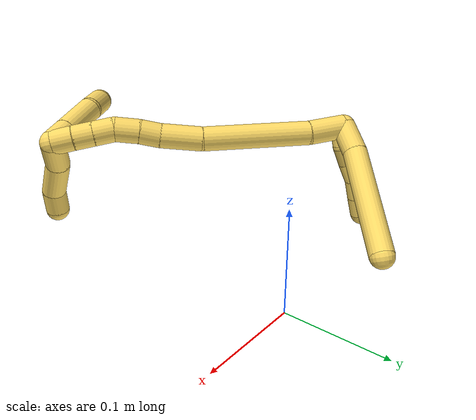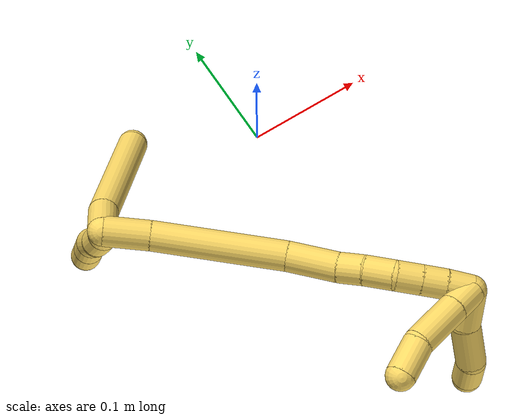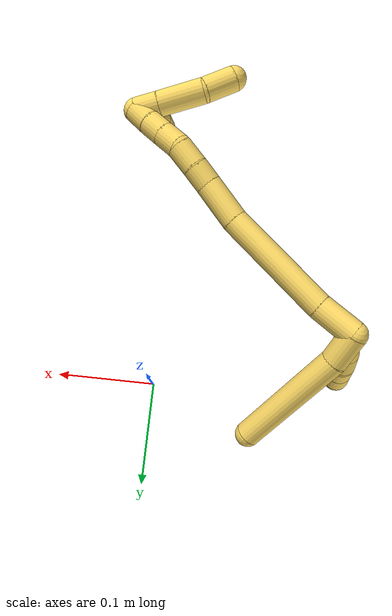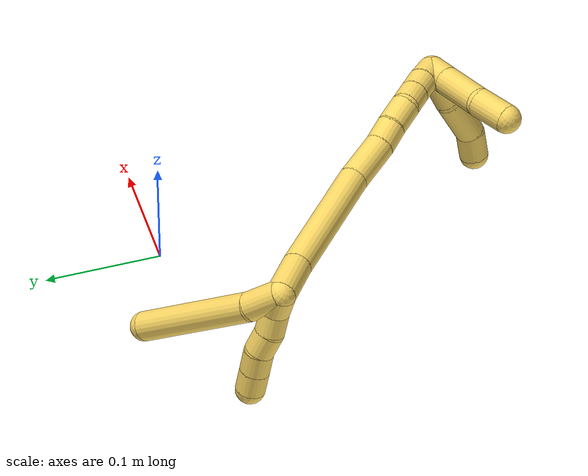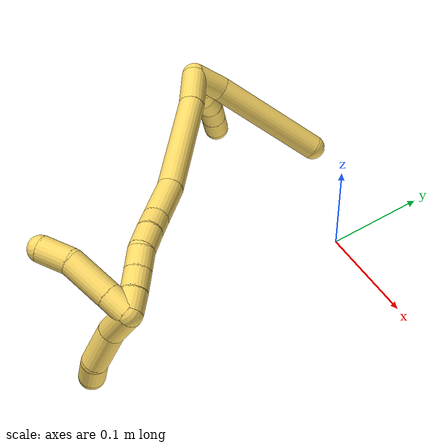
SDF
<sdf version="1.7">
 <world name="default">
  <model name="5">
   <static>0</static>
   <link name="5">
    <collision name="collision-cylinder-e_1_2_8">
     <pose>0.004692 0.004393 -0.014916 -2.85519 0.293073 -1.59415</pose>
     <geometry><cylinder><radius>0.0125</radius><length>0.032484</length></cylinder></geometry>
     <surface>
      <friction><ode><mu>1.16</mu><mu2>1.16</mu2><slip1>0</slip1><slip2>0</slip2></ode></friction>
      <contact><ode><kp>1e+06</kp><kd>1</kd><max_vel>0</max_vel><min_depth>0.001</min_depth></ode></contact>
     </surface>
    </collision>
    <visual name="visual-cylinder-e_1_2_8">
     <pose>0.004692 0.004393 -0.014916 -2.85519 0.293073 -1.59415</pose>
     <geometry><cylinder><radius>0.0125</radius><length>0.032484</length></cylinder></geometry>
     <material><ambient>1 0.858824 0.4 1</ambient></material>
    </visual>
    <collision name="collision-cylinder-e_2_8_6">
     <pose>0.035014 0.016918 -0.082076 -2.98716 0.451365 -2.49152</pose>
     <geometry><cylinder><radius>0.0125</radius><length>0.117516</length></cylinder></geometry>
     <surface>
      <friction><ode><mu>1.16</mu><mu2>1.16</mu2><slip1>0</slip1><slip2>0</slip2></ode></friction>
      <contact><ode><kp>1e+06</kp><kd>1</kd><max_vel>0</max_vel><min_depth>0.001</min_depth></ode></contact>
     </surface>
    </collision>
    <visual name="visual-cylinder-e_2_8_6">
     <pose>0.035014 0.016918 -0.082076 -2.98716 0.451365 -2.49152</pose>
     <geometry><cylinder><radius>0.0125</radius><length>0.117516</length></cylinder></geometry>
     <material><ambient>1 0.858824 0.4 1</ambient></material>
    </visual>
    <collision name="collision-cylinder-e_1_2_9">
     <pose>-0.00213 -0.001498 -0.009655 2.98768 -0.214658 -1.89925</pose>
     <geometry><cylinder><radius>0.0125</radius><length>0.02</length></cylinder></geometry>
     <surface>
      <friction><ode><mu>1.16</mu><mu2>1.16</mu2><slip1>0</slip1><slip2>0</slip2></ode></friction>
      <contact><ode><kp>1e+06</kp><kd>1</kd><max_vel>0</max_vel><min_depth>0.001</min_depth></ode></contact>
     </surface>
    </collision>
    <visual name="visual-cylinder-e_1_2_9">
     <pose>-0.00213 -0.001498 -0.009655 2.98768 -0.214658 -1.89925</pose>
     <geometry><cylinder><radius>0.0125</radius><length>0.02</length></cylinder></geometry>
     <material><ambient>1 0.858824 0.4 1</ambient></material>
    </visual>
    <collision name="collision-cylinder-e_2_9_10">
     <pose>-0.009044 -0.002559 -0.028081 -3.09189 -0.498804 2.94702</pose>
     <geometry><cylinder><radius>0.0125</radius><length>0.02</length></cylinder></geometry>
     <surface>
      <friction><ode><mu>1.16</mu><mu2>1.16</mu2><slip1>0</slip1><slip2>0</slip2></ode></friction>
      <contact><ode><kp>1e+06</kp><kd>1</kd><max_vel>0</max_vel><min_depth>0.001</min_depth></ode></contact>
     </surface>
    </collision>
    <visual name="visual-cylinder-e_2_9_10">
     <pose>-0.009044 -0.002559 -0.028081 -3.09189 -0.498804 2.94702</pose>
     <geometry><cylinder><radius>0.0125</radius><length>0.02</length></cylinder></geometry>
     <material><ambient>1 0.858824 0.4 1</ambient></material>
    </visual>
    <collision name="collision-cylinder-e_3_10_11">
     <pose>-0.016485 -0.000825 -0.046404 -3.00656 -0.268998 2.21476</pose>
     <geometry><cylinder><radius>0.0125</radius><length>0.02</length></cylinder></geometry>
     <surface>
      <friction><ode><mu>1.16</mu><mu2>1.16</mu2><slip1>0</slip1><slip2>0</slip2></ode></friction>
      <contact><ode><kp>1e+06</kp><kd>1</kd><max_vel>0</max_vel><min_depth>0.001</min_depth></ode></contact>
     </surface>
    </collision>
    <visual name="visual-cylinder-e_3_10_11">
     <pose>-0.016485 -0.000825 -0.046404 -3.00656 -0.268998 2.21476</pose>
     <geometry><cylinder><radius>0.0125</radius><length>0.02</length></cylinder></geometry>
     <material><ambient>1 0.858824 0.4 1</ambient></material>
    </visual>
    <collision name="collision-cylinder-e_4_11_12">
     <pose>-0.02297 -0.000487 -0.065146 3.03753 -0.392683 -2.62941</pose>
     <geometry><cylinder><radius>0.0125</radius><length>0.02</length></cylinder></geometry>
     <surface>
      <friction><ode><mu>1.16</mu><mu2>1.16</mu2><slip1>0</slip1><slip2>0</slip2></ode></friction>
      <contact><ode><kp>1e+06</kp><kd>1</kd><max_vel>0</max_vel><min_depth>0.001</min_depth></ode></contact>
     </surface>
    </collision>
    <visual name="visual-cylinder-e_4_11_12">
     <pose>-0.02297 -0.000487 -0.065146 3.03753 -0.392683 -2.62941</pose>
     <geometry><cylinder><radius>0.0125</radius><length>0.02</length></cylinder></geometry>
     <material><ambient>1 0.858824 0.4 1</ambient></material>
    </visual>
    <collision name="collision-cylinder-e_5_12_5">
     <pose>-0.030677 -0.002291 -0.083512 3.04984 -0.398481 -2.69447</pose>
     <geometry><cylinder><radius>0.0125</radius><length>0.02</length></cylinder></geometry>
     <surface>
      <friction><ode><mu>1.16</mu><mu2>1.16</mu2><slip1>0</slip1><slip2>0</slip2></ode></friction>
      <contact><ode><kp>1e+06</kp><kd>1</kd><max_vel>0</max_vel><min_depth>0.001</min_depth></ode></contact>
     </surface>
    </collision>
    <visual name="visual-cylinder-e_5_12_5">
     <pose>-0.030677 -0.002291 -0.083512 3.04984 -0.398481 -2.69447</pose>
     <geometry><cylinder><radius>0.0125</radius><length>0.02</length></cylinder></geometry>
     <material><ambient>1 0.858824 0.4 1</ambient></material>
    </visual>
    <collision name="collision-cylinder-e_1_2_13">
     <pose>0.010595 -0.016211 -0.000648 1.61075 0.578518 0.600739</pose>
     <geometry><cylinder><radius>0.0125</radius><length>0.038754</length></cylinder></geometry>
     <surface>
      <friction><ode><mu>1.16</mu><mu2>1.16</mu2><slip1>0</slip1><slip2>0</slip2></ode></friction>
      <contact><ode><kp>1e+06</kp><kd>1</kd><max_vel>0</max_vel><min_depth>0.001</min_depth></ode></contact>
     </surface>
    </collision>
    <visual name="visual-cylinder-e_1_2_13">
     <pose>0.010595 -0.016211 -0.000648 1.61075 0.578518 0.600739</pose>
     <geometry><cylinder><radius>0.0125</radius><length>0.038754</length></cylinder></geometry>
     <material><ambient>1 0.858824 0.4 1</ambient></material>
    </visual>
    <collision name="collision-cylinder-e_2_13_14">
     <pose>0.049472 -0.079842 0.003703 1.46576 0.53535 0.48405</pose>
     <geometry><cylinder><radius>0.0125</radius><length>0.110878</length></cylinder></geometry>
     <surface>
      <friction><ode><mu>1.16</mu><mu2>1.16</mu2><slip1>0</slip1><slip2>0</slip2></ode></friction>
      <contact><ode><kp>1e+06</kp><kd>1</kd><max_vel>0</max_vel><min_depth>0.001</min_depth></ode></contact>
     </surface>
    </collision>
    <visual name="visual-cylinder-e_2_13_14">
     <pose>0.049472 -0.079842 0.003703 1.46576 0.53535 0.48405</pose>
     <geometry><cylinder><radius>0.0125</radius><length>0.110878</length></cylinder></geometry>
     <material><ambient>1 0.858824 0.4 1</ambient></material>
    </visual>
    <collision name="collision-cylinder-e_3_14_15">
     <pose>0.08733 -0.145509 0.013691 1.30393 0.468615 0.360436</pose>
     <geometry><cylinder><radius>0.0125</radius><length>0.042406</length></cylinder></geometry>
     <surface>
      <friction><ode><mu>1.16</mu><mu2>1.16</mu2><slip1>0</slip1><slip2>0</slip2></ode></friction>
      <contact><ode><kp>1e+06</kp><kd>1</kd><max_vel>0</max_vel><min_depth>0.001</min_depth></ode></contact>
     </surface>
    </collision>
    <visual name="visual-cylinder-e_3_14_15">
     <pose>0.08733 -0.145509 0.013691 1.30393 0.468615 0.360436</pose>
     <geometry><cylinder><radius>0.0125</radius><length>0.042406</length></cylinder></geometry>
     <material><ambient>1 0.858824 0.4 1</ambient></material>
    </visual>
    <collision name="collision-cylinder-e_4_15_16">
     <pose>0.102563 -0.172013 0.022129 1.17508 0.563712 0.381021</pose>
     <geometry><cylinder><radius>0.0125</radius><length>0.021172</length></cylinder></geometry>
     <surface>
      <friction><ode><mu>1.16</mu><mu2>1.16</mu2><slip1>0</slip1><slip2>0</slip2></ode></friction>
      <contact><ode><kp>1e+06</kp><kd>1</kd><max_vel>0</max_vel><min_depth>0.001</min_depth></ode></contact>
     </surface>
    </collision>
    <visual name="visual-cylinder-e_4_15_16">
     <pose>0.102563 -0.172013 0.022129 1.17508 0.563712 0.381021</pose>
     <geometry><cylinder><radius>0.0125</radius><length>0.021172</length></cylinder></geometry>
     <material><ambient>1 0.858824 0.4 1</ambient></material>
    </visual>
    <collision name="collision-cylinder-e_5_16_17">
     <pose>0.114332 -0.190585 0.028509 1.29391 0.518099 0.395151</pose>
     <geometry><cylinder><radius>0.0125</radius><length>0.024688</length></cylinder></geometry>
     <surface>
      <friction><ode><mu>1.16</mu><mu2>1.16</mu2><slip1>0</slip1><slip2>0</slip2></ode></friction>
      <contact><ode><kp>1e+06</kp><kd>1</kd><max_vel>0</max_vel><min_depth>0.001</min_depth></ode></contact>
     </surface>
    </collision>
    <visual name="visual-cylinder-e_5_16_17">
     <pose>0.114332 -0.190585 0.028509 1.29391 0.518099 0.395151</pose>
     <geometry><cylinder><radius>0.0125</radius><length>0.024688</length></cylinder></geometry>
     <material><ambient>1 0.858824 0.4 1</ambient></material>
    </visual>
    <collision name="collision-cylinder-e_6_17_18">
     <pose>0.12552 -0.210058 0.030774 1.64345 0.504917 0.541228</pose>
     <geometry><cylinder><radius>0.0125</radius><length>0.020981</length></cylinder></geometry>
     <surface>
      <friction><ode><mu>1.16</mu><mu2>1.16</mu2><slip1>0</slip1><slip2>0</slip2></ode></friction>
      <contact><ode><kp>1e+06</kp><kd>1</kd><max_vel>0</max_vel><min_depth>0.001</min_depth></ode></contact>
     </surface>
    </collision>
    <visual name="visual-cylinder-e_6_17_18">
     <pose>0.12552 -0.210058 0.030774 1.64345 0.504917 0.541228</pose>
     <geometry><cylinder><radius>0.0125</radius><length>0.020981</length></cylinder></geometry>
     <material><ambient>1 0.858824 0.4 1</ambient></material>
    </visual>
    <collision name="collision-cylinder-e_7_18_19">
     <pose>0.135397 -0.228007 0.029504 1.63933 0.498988 0.532812</pose>
     <geometry><cylinder><radius>0.0125</radius><length>0.020073</length></cylinder></geometry>
     <surface>
      <friction><ode><mu>1.16</mu><mu2>1.16</mu2><slip1>0</slip1><slip2>0</slip2></ode></friction>
      <contact><ode><kp>1e+06</kp><kd>1</kd><max_vel>0</max_vel><min_depth>0.001</min_depth></ode></contact>
     </surface>
    </collision>
    <visual name="visual-cylinder-e_7_18_19">
     <pose>0.135397 -0.228007 0.029504 1.63933 0.498988 0.532812</pose>
     <geometry><cylinder><radius>0.0125</radius><length>0.020073</length></cylinder></geometry>
     <material><ambient>1 0.858824 0.4 1</ambient></material>
    </visual>
    <collision name="collision-cylinder-e_8_19_1">
     <pose>0.144682 -0.2463 0.02826 1.6382 0.439894 0.46951</pose>
     <geometry><cylinder><radius>0.0125</radius><length>0.021048</length></cylinder></geometry>
     <surface>
      <friction><ode><mu>1.16</mu><mu2>1.16</mu2><slip1>0</slip1><slip2>0</slip2></ode></friction>
      <contact><ode><kp>1e+06</kp><kd>1</kd><max_vel>0</max_vel><min_depth>0.001</min_depth></ode></contact>
     </surface>
    </collision>
    <visual name="visual-cylinder-e_8_19_1">
     <pose>0.144682 -0.2463 0.02826 1.6382 0.439894 0.46951</pose>
     <geometry><cylinder><radius>0.0125</radius><length>0.021048</length></cylinder></geometry>
     <material><ambient>1 0.858824 0.4 1</ambient></material>
    </visual>
    <collision name="collision-cylinder-e_1_1_20">
     <pose>0.136961 -0.26377 0.019093 2.38985 -0.807666 -1.65029</pose>
     <geometry><cylinder><radius>0.0125</radius><length>0.03377</length></cylinder></geometry>
     <surface>
      <friction><ode><mu>1.16</mu><mu2>1.16</mu2><slip1>0</slip1><slip2>0</slip2></ode></friction>
      <contact><ode><kp>1e+06</kp><kd>1</kd><max_vel>0</max_vel><min_depth>0.001</min_depth></ode></contact>
     </surface>
    </collision>
    <visual name="visual-cylinder-e_1_1_20">
     <pose>0.136961 -0.26377 0.019093 2.38985 -0.807666 -1.65029</pose>
     <geometry><cylinder><radius>0.0125</radius><length>0.03377</length></cylinder></geometry>
     <material><ambient>1 0.858824 0.4 1</ambient></material>
    </visual>
    <collision name="collision-cylinder-e_2_20_21">
     <pose>0.114057 -0.285113 -0.001179 2.29153 -0.54135 -1.09994</pose>
     <geometry><cylinder><radius>0.0125</radius><length>0.041535</length></cylinder></geometry>
     <surface>
      <friction><ode><mu>1.16</mu><mu2>1.16</mu2><slip1>0</slip1><slip2>0</slip2></ode></friction>
      <contact><ode><kp>1e+06</kp><kd>1</kd><max_vel>0</max_vel><min_depth>0.001</min_depth></ode></contact>
     </surface>
    </collision>
    <visual name="visual-cylinder-e_2_20_21">
     <pose>0.114057 -0.285113 -0.001179 2.29153 -0.54135 -1.09994</pose>
     <geometry><cylinder><radius>0.0125</radius><length>0.041535</length></cylinder></geometry>
     <material><ambient>1 0.858824 0.4 1</ambient></material>
    </visual>
    <collision name="collision-cylinder-e_3_21_4">
     <pose>0.0968 -0.302954 -0.022385 2.70031 -0.559674 -1.81614</pose>
     <geometry><cylinder><radius>0.0125</radius><length>0.024694</length></cylinder></geometry>
     <surface>
      <friction><ode><mu>1.16</mu><mu2>1.16</mu2><slip1>0</slip1><slip2>0</slip2></ode></friction>
      <contact><ode><kp>1e+06</kp><kd>1</kd><max_vel>0</max_vel><min_depth>0.001</min_depth></ode></contact>
     </surface>
    </collision>
    <visual name="visual-cylinder-e_3_21_4">
     <pose>0.0968 -0.302954 -0.022385 2.70031 -0.559674 -1.81614</pose>
     <geometry><cylinder><radius>0.0125</radius><length>0.024694</length></cylinder></geometry>
     <material><ambient>1 0.858824 0.4 1</ambient></material>
    </visual>
    <collision name="collision-cylinder-e_1_1_22">
     <pose>0.139387 -0.253787 0.034035 -0.304011 -0.968274 0.160769</pose>
     <geometry><cylinder><radius>0.0125</radius><length>0.023733</length></cylinder></geometry>
     <surface>
      <friction><ode><mu>1.16</mu><mu2>1.16</mu2><slip1>0</slip1><slip2>0</slip2></ode></friction>
      <contact><ode><kp>1e+06</kp><kd>1</kd><max_vel>0</max_vel><min_depth>0.001</min_depth></ode></contact>
     </surface>
    </collision>
    <visual name="visual-cylinder-e_1_1_22">
     <pose>0.139387 -0.253787 0.034035 -0.304011 -0.968274 0.160769</pose>
     <geometry><cylinder><radius>0.0125</radius><length>0.023733</length></cylinder></geometry>
     <material><ambient>1 0.858824 0.4 1</ambient></material>
    </visual>
    <collision name="collision-cylinder-e_2_22_23">
     <pose>0.110918 -0.247895 0.052922 -0.30154 -0.960939 0.158037</pose>
     <geometry><cylinder><radius>0.0125</radius><length>0.045605</length></cylinder></geometry>
     <surface>
      <friction><ode><mu>1.16</mu><mu2>1.16</mu2><slip1>0</slip1><slip2>0</slip2></ode></friction>
      <contact><ode><kp>1e+06</kp><kd>1</kd><max_vel>0</max_vel><min_depth>0.001</min_depth></ode></contact>
     </surface>
    </collision>
    <visual name="visual-cylinder-e_2_22_23">
     <pose>0.110918 -0.247895 0.052922 -0.30154 -0.960939 0.158037</pose>
     <geometry><cylinder><radius>0.0125</radius><length>0.045605</length></cylinder></geometry>
     <material><ambient>1 0.858824 0.4 1</ambient></material>
    </visual>
    <collision name="collision-cylinder-e_3_23_3">
     <pose>0.078526 -0.245837 0.072029 0.267745 -1.10533 -0.165752</pose>
     <geometry><cylinder><radius>0.0125</radius><length>0.030662</length></cylinder></geometry>
     <surface>
      <friction><ode><mu>1.16</mu><mu2>1.16</mu2><slip1>0</slip1><slip2>0</slip2></ode></friction>
      <contact><ode><kp>1e+06</kp><kd>1</kd><max_vel>0</max_vel><min_depth>0.001</min_depth></ode></contact>
     </surface>
    </collision>
    <visual name="visual-cylinder-e_3_23_3">
     <pose>0.078526 -0.245837 0.072029 0.267745 -1.10533 -0.165752</pose>
     <geometry><cylinder><radius>0.0125</radius><length>0.030662</length></cylinder></geometry>
     <material><ambient>1 0.858824 0.4 1</ambient></material>
    </visual>
    <collision name="collision-sphere-3">
     <pose>0.064826 -0.247657 0.078665 0 -0 0</pose>
     <geometry><sphere><radius>0.0125</radius></sphere></geometry>
     <surface>
      <friction><ode><mu>1.16</mu><mu2>1.16</mu2><slip1>0</slip1><slip2>0</slip2></ode></friction>
      <contact><ode><kp>1e+06</kp><kd>1</kd><max_vel>0</max_vel><min_depth>0.001</min_depth></ode></contact>
     </surface>
    </collision>
    <visual name="visual-sphere-3">
     <pose>0.064826 -0.247657 0.078665 0 -0 0</pose>
     <geometry><sphere><radius>0.0125</radius></sphere></geometry>
     <material><ambient>1 0.858824 0.4 1</ambient></material>
    </visual>
    <collision name="collision-sphere-23">
     <pose>0.092226 -0.244016 0.065393 0 -0 0</pose>
     <geometry><sphere><radius>0.0125</radius></sphere></geometry>
     <surface>
      <friction><ode><mu>1.16</mu><mu2>1.16</mu2><slip1>0</slip1><slip2>0</slip2></ode></friction>
      <contact><ode><kp>1e+06</kp><kd>1</kd><max_vel>0</max_vel><min_depth>0.001</min_depth></ode></contact>
     </surface>
    </collision>
    <visual name="visual-sphere-23">
     <pose>0.092226 -0.244016 0.065393 0 -0 0</pose>
     <geometry><sphere><radius>0.0125</radius></sphere></geometry>
     <material><ambient>1 0.858824 0.4 1</ambient></material>
    </visual>
    <collision name="collision-sphere-22">
     <pose>0.12961 -0.251774 0.040451 0 -0 0</pose>
     <geometry><sphere><radius>0.0125</radius></sphere></geometry>
     <surface>
      <friction><ode><mu>1.16</mu><mu2>1.16</mu2><slip1>0</slip1><slip2>0</slip2></ode></friction>
      <contact><ode><kp>1e+06</kp><kd>1</kd><max_vel>0</max_vel><min_depth>0.001</min_depth></ode></contact>
     </surface>
    </collision>
    <visual name="visual-sphere-22">
     <pose>0.12961 -0.251774 0.040451 0 -0 0</pose>
     <geometry><sphere><radius>0.0125</radius></sphere></geometry>
     <material><ambient>1 0.858824 0.4 1</ambient></material>
    </visual>
    <collision name="collision-sphere-4">
     <pose>0.090245 -0.307423 -0.031846 0 -0 0</pose>
     <geometry><sphere><radius>0.0125</radius></sphere></geometry>
     <surface>
      <friction><ode><mu>1.16</mu><mu2>1.16</mu2><slip1>0</slip1><slip2>0</slip2></ode></friction>
      <contact><ode><kp>1e+06</kp><kd>1</kd><max_vel>0</max_vel><min_depth>0.001</min_depth></ode></contact>
     </surface>
    </collision>
    <visual name="visual-sphere-4">
     <pose>0.090245 -0.307423 -0.031846 0 -0 0</pose>
     <geometry><sphere><radius>0.0125</radius></sphere></geometry>
     <material><ambient>1 0.858824 0.4 1</ambient></material>
    </visual>
    <collision name="collision-sphere-21">
     <pose>0.103355 -0.298485 -0.012924 0 -0 0</pose>
     <geometry><sphere><radius>0.0125</radius></sphere></geometry>
     <surface>
      <friction><ode><mu>1.16</mu><mu2>1.16</mu2><slip1>0</slip1><slip2>0</slip2></ode></friction>
      <contact><ode><kp>1e+06</kp><kd>1</kd><max_vel>0</max_vel><min_depth>0.001</min_depth></ode></contact>
     </surface>
    </collision>
    <visual name="visual-sphere-21">
     <pose>0.103355 -0.298485 -0.012924 0 -0 0</pose>
     <geometry><sphere><radius>0.0125</radius></sphere></geometry>
     <material><ambient>1 0.858824 0.4 1</ambient></material>
    </visual>
    <collision name="collision-sphere-20">
     <pose>0.124758 -0.27174 0.010567 0 -0 0</pose>
     <geometry><sphere><radius>0.0125</radius></sphere></geometry>
     <surface>
      <friction><ode><mu>1.16</mu><mu2>1.16</mu2><slip1>0</slip1><slip2>0</slip2></ode></friction>
      <contact><ode><kp>1e+06</kp><kd>1</kd><max_vel>0</max_vel><min_depth>0.001</min_depth></ode></contact>
     </surface>
    </collision>
    <visual name="visual-sphere-20">
     <pose>0.124758 -0.27174 0.010567 0 -0 0</pose>
     <geometry><sphere><radius>0.0125</radius></sphere></geometry>
     <material><ambient>1 0.858824 0.4 1</ambient></material>
    </visual>
    <collision name="collision-sphere-11">
     <pose>-0.019143 0.000472 -0.055957 0 -0 0</pose>
     <geometry><sphere><radius>0.0125</radius></sphere></geometry>
     <surface>
      <friction><ode><mu>1.16</mu><mu2>1.16</mu2><slip1>0</slip1><slip2>0</slip2></ode></friction>
      <contact><ode><kp>1e+06</kp><kd>1</kd><max_vel>0</max_vel><min_depth>0.001</min_depth></ode></contact>
     </surface>
    </collision>
    <visual name="visual-sphere-11">
     <pose>-0.019143 0.000472 -0.055957 0 -0 0</pose>
     <geometry><sphere><radius>0.0125</radius></sphere></geometry>
     <material><ambient>1 0.858824 0.4 1</ambient></material>
    </visual>
    <collision name="collision-sphere-10">
     <pose>-0.013828 -0.002123 -0.036851 0 -0 0</pose>
     <geometry><sphere><radius>0.0125</radius></sphere></geometry>
     <surface>
      <friction><ode><mu>1.16</mu><mu2>1.16</mu2><slip1>0</slip1><slip2>0</slip2></ode></friction>
      <contact><ode><kp>1e+06</kp><kd>1</kd><max_vel>0</max_vel><min_depth>0.001</min_depth></ode></contact>
     </surface>
    </collision>
    <visual name="visual-sphere-10">
     <pose>-0.013828 -0.002123 -0.036851 0 -0 0</pose>
     <geometry><sphere><radius>0.0125</radius></sphere></geometry>
     <material><ambient>1 0.858824 0.4 1</ambient></material>
    </visual>
    <collision name="collision-sphere-6">
     <pose>0.060644 0.025051 -0.134321 0 -0 0</pose>
     <geometry><sphere><radius>0.0125</radius></sphere></geometry>
     <surface>
      <friction><ode><mu>1.16</mu><mu2>1.16</mu2><slip1>0</slip1><slip2>0</slip2></ode></friction>
      <contact><ode><kp>1e+06</kp><kd>1</kd><max_vel>0</max_vel><min_depth>0.001</min_depth></ode></contact>
     </surface>
    </collision>
    <visual name="visual-sphere-6">
     <pose>0.060644 0.025051 -0.134321 0 -0 0</pose>
     <geometry><sphere><radius>0.0125</radius></sphere></geometry>
     <material><ambient>1 0.858824 0.4 1</ambient></material>
    </visual>
    <collision name="collision-sphere-9">
     <pose>-0.00426 -0.002996 -0.01931 0 -0 0</pose>
     <geometry><sphere><radius>0.0125</radius></sphere></geometry>
     <surface>
      <friction><ode><mu>1.16</mu><mu2>1.16</mu2><slip1>0</slip1><slip2>0</slip2></ode></friction>
      <contact><ode><kp>1e+06</kp><kd>1</kd><max_vel>0</max_vel><min_depth>0.001</min_depth></ode></contact>
     </surface>
    </collision>
    <visual name="visual-sphere-9">
     <pose>-0.00426 -0.002996 -0.01931 0 -0 0</pose>
     <geometry><sphere><radius>0.0125</radius></sphere></geometry>
     <material><ambient>1 0.858824 0.4 1</ambient></material>
    </visual>
    <collision name="collision-sphere-2">
     <geometry><sphere><radius>0.0125</radius></sphere></geometry>
     <surface>
      <friction><ode><mu>1.16</mu><mu2>1.16</mu2><slip1>0</slip1><slip2>0</slip2></ode></friction>
      <contact><ode><kp>1e+06</kp><kd>1</kd><max_vel>0</max_vel><min_depth>0.001</min_depth></ode></contact>
     </surface>
    </collision>
    <visual name="visual-sphere-2">
     <geometry><sphere><radius>0.0125</radius></sphere></geometry>
     <material><ambient>1 0.858824 0.4 1</ambient></material>
    </visual>
    <collision name="collision-sphere-19">
     <pose>0.1402 -0.2368 0.028901 0 -0 0</pose>
     <geometry><sphere><radius>0.0125</radius></sphere></geometry>
     <surface>
      <friction><ode><mu>1.16</mu><mu2>1.16</mu2><slip1>0</slip1><slip2>0</slip2></ode></friction>
      <contact><ode><kp>1e+06</kp><kd>1</kd><max_vel>0</max_vel><min_depth>0.001</min_depth></ode></contact>
     </surface>
    </collision>
    <visual name="visual-sphere-19">
     <pose>0.1402 -0.2368 0.028901 0 -0 0</pose>
     <geometry><sphere><radius>0.0125</radius></sphere></geometry>
     <material><ambient>1 0.858824 0.4 1</ambient></material>
    </visual>
    <collision name="collision-sphere-8">
     <pose>0.009384 0.008785 -0.029832 0 -0 0</pose>
     <geometry><sphere><radius>0.0125</radius></sphere></geometry>
     <surface>
      <friction><ode><mu>1.16</mu><mu2>1.16</mu2><slip1>0</slip1><slip2>0</slip2></ode></friction>
      <contact><ode><kp>1e+06</kp><kd>1</kd><max_vel>0</max_vel><min_depth>0.001</min_depth></ode></contact>
     </surface>
    </collision>
    <visual name="visual-sphere-8">
     <pose>0.009384 0.008785 -0.029832 0 -0 0</pose>
     <geometry><sphere><radius>0.0125</radius></sphere></geometry>
     <material><ambient>1 0.858824 0.4 1</ambient></material>
    </visual>
    <collision name="collision-sphere-12">
     <pose>-0.026796 -0.001447 -0.074334 0 -0 0</pose>
     <geometry><sphere><radius>0.0125</radius></sphere></geometry>
     <surface>
      <friction><ode><mu>1.16</mu><mu2>1.16</mu2><slip1>0</slip1><slip2>0</slip2></ode></friction>
      <contact><ode><kp>1e+06</kp><kd>1</kd><max_vel>0</max_vel><min_depth>0.001</min_depth></ode></contact>
     </surface>
    </collision>
    <visual name="visual-sphere-12">
     <pose>-0.026796 -0.001447 -0.074334 0 -0 0</pose>
     <geometry><sphere><radius>0.0125</radius></sphere></geometry>
     <material><ambient>1 0.858824 0.4 1</ambient></material>
    </visual>
    <collision name="collision-sphere-5">
     <pose>-0.034557 -0.003136 -0.09269 0 -0 0</pose>
     <geometry><sphere><radius>0.0125</radius></sphere></geometry>
     <surface>
      <friction><ode><mu>1.16</mu><mu2>1.16</mu2><slip1>0</slip1><slip2>0</slip2></ode></friction>
      <contact><ode><kp>1e+06</kp><kd>1</kd><max_vel>0</max_vel><min_depth>0.001</min_depth></ode></contact>
     </surface>
    </collision>
    <visual name="visual-sphere-5">
     <pose>-0.034557 -0.003136 -0.09269 0 -0 0</pose>
     <geometry><sphere><radius>0.0125</radius></sphere></geometry>
     <material><ambient>1 0.858824 0.4 1</ambient></material>
    </visual>
    <collision name="collision-sphere-13">
     <pose>0.02119 -0.032422 -0.001296 0 -0 0</pose>
     <geometry><sphere><radius>0.0125</radius></sphere></geometry>
     <surface>
      <friction><ode><mu>1.16</mu><mu2>1.16</mu2><slip1>0</slip1><slip2>0</slip2></ode></friction>
      <contact><ode><kp>1e+06</kp><kd>1</kd><max_vel>0</max_vel><min_depth>0.001</min_depth></ode></contact>
     </surface>
    </collision>
    <visual name="visual-sphere-13">
     <pose>0.02119 -0.032422 -0.001296 0 -0 0</pose>
     <geometry><sphere><radius>0.0125</radius></sphere></geometry>
     <material><ambient>1 0.858824 0.4 1</ambient></material>
    </visual>
    <collision name="collision-sphere-14">
     <pose>0.077754 -0.127262 0.008702 0 -0 0</pose>
     <geometry><sphere><radius>0.0125</radius></sphere></geometry>
     <surface>
      <friction><ode><mu>1.16</mu><mu2>1.16</mu2><slip1>0</slip1><slip2>0</slip2></ode></friction>
      <contact><ode><kp>1e+06</kp><kd>1</kd><max_vel>0</max_vel><min_depth>0.001</min_depth></ode></contact>
     </surface>
    </collision>
    <visual name="visual-sphere-14">
     <pose>0.077754 -0.127262 0.008702 0 -0 0</pose>
     <geometry><sphere><radius>0.0125</radius></sphere></geometry>
     <material><ambient>1 0.858824 0.4 1</ambient></material>
    </visual>
    <collision name="collision-sphere-15">
     <pose>0.096906 -0.163756 0.018679 0 -0 0</pose>
     <geometry><sphere><radius>0.0125</radius></sphere></geometry>
     <surface>
      <friction><ode><mu>1.16</mu><mu2>1.16</mu2><slip1>0</slip1><slip2>0</slip2></ode></friction>
      <contact><ode><kp>1e+06</kp><kd>1</kd><max_vel>0</max_vel><min_depth>0.001</min_depth></ode></contact>
     </surface>
    </collision>
    <visual name="visual-sphere-15">
     <pose>0.096906 -0.163756 0.018679 0 -0 0</pose>
     <geometry><sphere><radius>0.0125</radius></sphere></geometry>
     <material><ambient>1 0.858824 0.4 1</ambient></material>
    </visual>
    <collision name="collision-sphere-16">
     <pose>0.108219 -0.18027 0.025578 0 -0 0</pose>
     <geometry><sphere><radius>0.0125</radius></sphere></geometry>
     <surface>
      <friction><ode><mu>1.16</mu><mu2>1.16</mu2><slip1>0</slip1><slip2>0</slip2></ode></friction>
      <contact><ode><kp>1e+06</kp><kd>1</kd><max_vel>0</max_vel><min_depth>0.001</min_depth></ode></contact>
     </surface>
    </collision>
    <visual name="visual-sphere-16">
     <pose>0.108219 -0.18027 0.025578 0 -0 0</pose>
     <geometry><sphere><radius>0.0125</radius></sphere></geometry>
     <material><ambient>1 0.858824 0.4 1</ambient></material>
    </visual>
    <collision name="collision-sphere-17">
     <pose>0.120445 -0.200901 0.031441 0 -0 0</pose>
     <geometry><sphere><radius>0.0125</radius></sphere></geometry>
     <surface>
      <friction><ode><mu>1.16</mu><mu2>1.16</mu2><slip1>0</slip1><slip2>0</slip2></ode></friction>
      <contact><ode><kp>1e+06</kp><kd>1</kd><max_vel>0</max_vel><min_depth>0.001</min_depth></ode></contact>
     </surface>
    </collision>
    <visual name="visual-sphere-17">
     <pose>0.120445 -0.200901 0.031441 0 -0 0</pose>
     <geometry><sphere><radius>0.0125</radius></sphere></geometry>
     <material><ambient>1 0.858824 0.4 1</ambient></material>
    </visual>
    <collision name="collision-sphere-18">
     <pose>0.130595 -0.219215 0.030108 0 -0 0</pose>
     <geometry><sphere><radius>0.0125</radius></sphere></geometry>
     <surface>
      <friction><ode><mu>1.16</mu><mu2>1.16</mu2><slip1>0</slip1><slip2>0</slip2></ode></friction>
      <contact><ode><kp>1e+06</kp><kd>1</kd><max_vel>0</max_vel><min_depth>0.001</min_depth></ode></contact>
     </surface>
    </collision>
    <visual name="visual-sphere-18">
     <pose>0.130595 -0.219215 0.030108 0 -0 0</pose>
     <geometry><sphere><radius>0.0125</radius></sphere></geometry>
     <material><ambient>1 0.858824 0.4 1</ambient></material>
    </visual>
    <collision name="collision-sphere-1">
     <pose>0.149163 -0.2558 0.027618 0 -0 0</pose>
     <geometry><sphere><radius>0.0125</radius></sphere></geometry>
     <surface>
      <friction><ode><mu>1.16</mu><mu2>1.16</mu2><slip1>0</slip1><slip2>0</slip2></ode></friction>
      <contact><ode><kp>1e+06</kp><kd>1</kd><max_vel>0</max_vel><min_depth>0.001</min_depth></ode></contact>
     </surface>
    </collision>
    <visual name="visual-sphere-1">
     <pose>0.149163 -0.2558 0.027618 0 -0 0</pose>
     <geometry><sphere><radius>0.0125</radius></sphere></geometry>
     <material><ambient>1 0.858824 0.4 1</ambient></material>
    </visual>
    <inertial>
     <pose>0.064211 -0.119048 -0.007122 0 -0 0</pose>
     <mass>0.75</mass>
     <inertia><ixx>-2e-05</ixx><ixy>0</ixy><ixz>0</ixz><iyy>0.00013</iyy><iyz>0</iyz><izz>-2e-05</izz></inertia>
    </inertial>
   </link>
   <pose>-0.179364 -0.051861 0.113242 0.350061 -0.379461 0.255684</pose>
  </model>
 </world>
</sdf>
